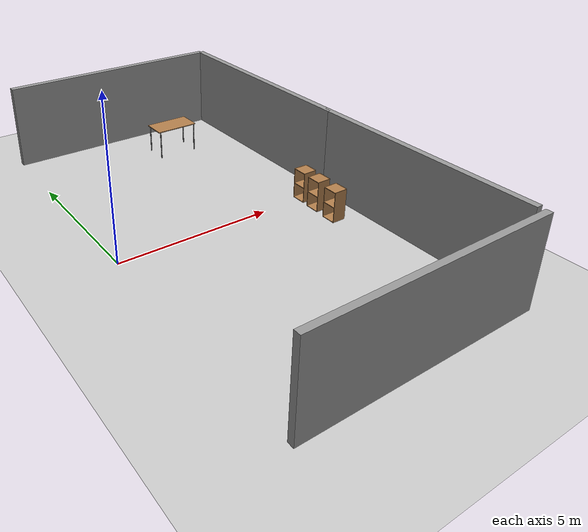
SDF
<sdf version="1.7">
 <world name="default">
  <model name="ground_plane">
   <static>1</static>
   <link name="link">
    <collision name="collision">
     <geometry><plane><normal>0 0 1</normal><size>100 100</size></plane></geometry>
     <surface><friction><ode><mu>100</mu><mu2>50</mu2></ode></friction></surface>
    </collision>
    <visual name="visual">
     <cast_shadows>0</cast_shadows>
     <geometry><plane><normal>0 0 1</normal><size>100 100</size></plane></geometry>
     <material>
      <script><uri>file://media/materials/scripts/gazebo.material</uri><name>Gazebo/Grey</name></script>
     </material>
    </visual>
   </link>
  </model>
  <model name="grey_wall">
   <static>1</static>
   <link name="link">
    <pose>0 0 1.4 0 -0 0</pose>
    <collision name="collision"><geometry><box><size>7.5 0.2 2.8</size></box></geometry></collision>
    <visual name="visual">
     <cast_shadows>0</cast_shadows>
     <geometry><box><size>7.5 0.2 2.8</size></box></geometry>
     <material>
      <script>
       <uri>model://grey_wall/materials/scripts</uri>
       <uri>model://grey_wall/materials/textures</uri>
       <name>vrc/grey_wall</name>
      </script>
     </material>
    </visual>
   </link>
   <pose>3.75 7.5 0 0 -0 0</pose>
  </model>
  <model name="grey_wall_2">
   <static>1</static>
   <link name="link">
    <pose>0 0 1.4 0 -0 0</pose>
    <collision name="collision"><geometry><box><size>7.5 0.2 2.8</size></box></geometry></collision>
    <visual name="visual">
     <cast_shadows>0</cast_shadows>
     <geometry><box><size>7.5 0.2 2.8</size></box></geometry>
     <material>
      <script>
       <uri>model://grey_wall/materials/scripts</uri>
       <uri>model://grey_wall/materials/textures</uri>
       <name>vrc/grey_wall</name>
      </script>
     </material>
    </visual>
   </link>
   <pose>3.75 -7.5 0 0 -0 0</pose>
  </model>
  <model name="grey_wall_5">
   <static>1</static>
   <link name="link">
    <pose>0 0 1.4 0 -0 0</pose>
    <collision name="collision"><geometry><box><size>7.5 0.2 2.8</size></box></geometry></collision>
    <visual name="visual">
     <cast_shadows>0</cast_shadows>
     <geometry><box><size>7.5 0.2 2.8</size></box></geometry>
     <material>
      <script>
       <uri>model://grey_wall/materials/scripts</uri>
       <uri>model://grey_wall/materials/textures</uri>
       <name>vrc/grey_wall</name>
      </script>
     </material>
    </visual>
   </link>
   <pose>7.5 -3.5 0 0 -0 1.5707</pose>
  </model>
  <model name="grey_wall_6">
   <static>1</static>
   <link name="link">
    <pose>0 0 1.4 0 -0 0</pose>
    <collision name="collision"><geometry><box><size>7.5 0.2 2.8</size></box></geometry></collision>
    <visual name="visual">
     <cast_shadows>0</cast_shadows>
     <geometry><box><size>7.5 0.2 2.8</size></box></geometry>
     <material>
      <script>
       <uri>model://grey_wall/materials/scripts</uri>
       <uri>model://grey_wall/materials/textures</uri>
       <name>vrc/grey_wall</name>
      </script>
     </material>
    </visual>
   </link>
   <pose>7.5 3.75 0 0 -0 1.5707</pose>
  </model>
  <model name="table">
   <static>1</static>
   <link name="link">
    <collision name="surface">
     <pose>0 0 1 0 -0 0</pose>
     <geometry><box><size>1.5 0.8 0.03</size></box></geometry>
     <surface><friction><ode><mu>0.6</mu><mu2>0.6</mu2></ode></friction></surface>
    </collision>
    <visual name="visual1">
     <pose>0 0 1 0 -0 0</pose>
     <geometry><box><size>1.5 0.8 0.03</size></box></geometry>
     <material>
      <script><uri>file://media/materials/scripts/gazebo.material</uri><name>Gazebo/Wood</name></script>
     </material>
    </visual>
    <collision name="front_left_leg">
     <pose>0.68 0.38 0.5 0 -0 0</pose>
     <geometry><cylinder><radius>0.02</radius><length>1</length></cylinder></geometry>
    </collision>
    <visual name="front_left_leg">
     <pose>0.68 0.38 0.5 0 -0 0</pose>
     <geometry><cylinder><radius>0.02</radius><length>1</length></cylinder></geometry>
     <material>
      <script><uri>file://media/materials/scripts/gazebo.material</uri><name>Gazebo/Grey</name></script>
     </material>
    </visual>
    <collision name="front_right_leg">
     <pose>0.68 -0.38 0.5 0 -0 0</pose>
     <geometry><cylinder><radius>0.02</radius><length>1</length></cylinder></geometry>
    </collision>
    <visual name="front_right_leg">
     <pose>0.68 -0.38 0.5 0 -0 0</pose>
     <geometry><cylinder><radius>0.02</radius><length>1</length></cylinder></geometry>
     <material>
      <script><uri>file://media/materials/scripts/gazebo.material</uri><name>Gazebo/Grey</name></script>
     </material>
    </visual>
    <collision name="back_right_leg">
     <pose>-0.68 -0.38 0.5 0 -0 0</pose>
     <geometry><cylinder><radius>0.02</radius><length>1</length></cylinder></geometry>
    </collision>
    <visual name="back_right_leg">
     <pose>-0.68 -0.38 0.5 0 -0 0</pose>
     <geometry><cylinder><radius>0.02</radius><length>1</length></cylinder></geometry>
     <material>
      <script><uri>file://media/materials/scripts/gazebo.material</uri><name>Gazebo/Grey</name></script>
     </material>
    </visual>
    <collision name="back_left_leg">
     <pose>-0.68 0.38 0.5 0 -0 0</pose>
     <geometry><cylinder><radius>0.02</radius><length>1</length></cylinder></geometry>
    </collision>
    <visual name="back_left_leg">
     <pose>-0.68 0.38 0.5 0 -0 0</pose>
     <geometry><cylinder><radius>0.02</radius><length>1</length></cylinder></geometry>
     <material>
      <script><uri>file://media/materials/scripts/gazebo.material</uri><name>Gazebo/Grey</name></script>
     </material>
    </visual>
   </link>
   <pose>4.98432 5.54874 0 0 -0 0</pose>
  </model>
  <model name="cabinet">
   <static>1</static>
   <link name="cabinet_bottom_plate">
    <inertial>
     <pose>0 0 -1 0 -0 0</pose>
     <inertia><ixx>2.05</ixx><ixy>0</ixy><ixz>0</ixz><iyy>2.05</iyy><iyz>0</iyz><izz>2.05</izz></inertia>
     <mass>25</mass>
    </inertial>
    <collision name="cabinet_bottom_plate_geom">
     <pose>0 0 0.01 0 -0 0</pose>
     <geometry><box><size>0.45 0.45 0.02</size></box></geometry>
    </collision>
    <visual name="cabinet_bottom_plate_geom_visual">
     <pose>0 0 0.01 0 -0 0</pose>
     <geometry><box><size>0.45 0.45 0.02</size></box></geometry>
     <material>
      <script><uri>file://media/materials/scripts/gazebo.material</uri><name>Gazebo/Wood</name></script>
     </material>
    </visual>
    <collision name="cabinet_bottom_plate_geom_cabinet_back_plate">
     <pose>0.235 0 0.51 0 -0 0</pose>
     <geometry><box><size>0.02 0.45 1.02</size></box></geometry>
    </collision>
    <visual name="cabinet_bottom_plate_geom_cabinet_back_plate_visual">
     <pose>0.235 0 0.51 0 -0 0</pose>
     <geometry><box><size>0.02 0.45 1.02</size></box></geometry>
     <material>
      <script><uri>file://media/materials/scripts/gazebo.material</uri><name>Gazebo/Wood</name></script>
     </material>
    </visual>
    <collision name="cabinet_bottom_plate_geom_cabinet_left_plate">
     <pose>0 0.235 0.51 0 -0 0</pose>
     <geometry><box><size>0.45 0.02 1.02</size></box></geometry>
    </collision>
    <visual name="cabinet_bottom_plate_geom_cabinet_left_plate_visual">
     <pose>0 0.235 0.51 0 -0 0</pose>
     <geometry><box><size>0.45 0.02 1.02</size></box></geometry>
     <material>
      <script><uri>file://media/materials/scripts/gazebo.material</uri><name>Gazebo/Wood</name></script>
     </material>
    </visual>
    <collision name="cabinet_bottom_plate_geom_cabinet_middle_plate">
     <pose>0 0 0.51 0 -0 0</pose>
     <geometry><box><size>0.45 0.45 0.02</size></box></geometry>
    </collision>
    <visual name="cabinet_bottom_plate_geom_cabinet_middle_plate_visual">
     <pose>0 0 0.51 0 -0 0</pose>
     <geometry><box><size>0.45 0.45 0.02</size></box></geometry>
     <material>
      <script><uri>file://media/materials/scripts/gazebo.material</uri><name>Gazebo/Wood</name></script>
     </material>
    </visual>
    <collision name="cabinet_bottom_plate_geom_cabinet_right_plate">
     <pose>0 -0.235 0.51 0 -0 0</pose>
     <geometry><box><size>0.45 0.02 1.02</size></box></geometry>
    </collision>
    <visual name="cabinet_bottom_plate_geom_cabinet_right_plate_visual">
     <pose>0 -0.235 0.51 0 -0 0</pose>
     <geometry><box><size>0.45 0.02 1.02</size></box></geometry>
     <material>
      <script><uri>file://media/materials/scripts/gazebo.material</uri><name>Gazebo/Wood</name></script>
     </material>
    </visual>
    <collision name="cabinet_bottom_plate_geom_cabinet_top_plate">
     <pose>0 0 1.01 0 -0 0</pose>
     <geometry><box><size>0.45 0.45 0.02</size></box></geometry>
    </collision>
    <visual name="cabinet_bottom_plate_geom_cabinet_top_plate_visual">
     <pose>0 0 1.01 0 -0 0</pose>
     <geometry><box><size>0.45 0.45 0.02</size></box></geometry>
     <material>
      <script><uri>file://media/materials/scripts/gazebo.material</uri><name>Gazebo/Wood</name></script>
     </material>
    </visual>
   </link>
   <pose>6.54523 -1.47526 0 0 -0 0</pose>
  </model>
  <model name="cabinet_0">
   <static>1</static>
   <link name="cabinet_bottom_plate">
    <inertial>
     <pose>0 0 -1 0 -0 0</pose>
     <inertia><ixx>2.05</ixx><ixy>0</ixy><ixz>0</ixz><iyy>2.05</iyy><iyz>0</iyz><izz>2.05</izz></inertia>
     <mass>25</mass>
    </inertial>
    <collision name="cabinet_bottom_plate_geom">
     <pose>0 0 0.01 0 -0 0</pose>
     <geometry><box><size>0.45 0.45 0.02</size></box></geometry>
    </collision>
    <visual name="cabinet_bottom_plate_geom_visual">
     <pose>0 0 0.01 0 -0 0</pose>
     <geometry><box><size>0.45 0.45 0.02</size></box></geometry>
     <material>
      <script><uri>file://media/materials/scripts/gazebo.material</uri><name>Gazebo/Wood</name></script>
     </material>
    </visual>
    <collision name="cabinet_bottom_plate_geom_cabinet_back_plate">
     <pose>0.235 0 0.51 0 -0 0</pose>
     <geometry><box><size>0.02 0.45 1.02</size></box></geometry>
    </collision>
    <visual name="cabinet_bottom_plate_geom_cabinet_back_plate_visual">
     <pose>0.235 0 0.51 0 -0 0</pose>
     <geometry><box><size>0.02 0.45 1.02</size></box></geometry>
     <material>
      <script><uri>file://media/materials/scripts/gazebo.material</uri><name>Gazebo/Wood</name></script>
     </material>
    </visual>
    <collision name="cabinet_bottom_plate_geom_cabinet_left_plate">
     <pose>0 0.235 0.51 0 -0 0</pose>
     <geometry><box><size>0.45 0.02 1.02</size></box></geometry>
    </collision>
    <visual name="cabinet_bottom_plate_geom_cabinet_left_plate_visual">
     <pose>0 0.235 0.51 0 -0 0</pose>
     <geometry><box><size>0.45 0.02 1.02</size></box></geometry>
     <material>
      <script><uri>file://media/materials/scripts/gazebo.material</uri><name>Gazebo/Wood</name></script>
     </material>
    </visual>
    <collision name="cabinet_bottom_plate_geom_cabinet_middle_plate">
     <pose>0 0 0.51 0 -0 0</pose>
     <geometry><box><size>0.45 0.45 0.02</size></box></geometry>
    </collision>
    <visual name="cabinet_bottom_plate_geom_cabinet_middle_plate_visual">
     <pose>0 0 0.51 0 -0 0</pose>
     <geometry><box><size>0.45 0.45 0.02</size></box></geometry>
     <material>
      <script><uri>file://media/materials/scripts/gazebo.material</uri><name>Gazebo/Wood</name></script>
     </material>
    </visual>
    <collision name="cabinet_bottom_plate_geom_cabinet_right_plate">
     <pose>0 -0.235 0.51 0 -0 0</pose>
     <geometry><box><size>0.45 0.02 1.02</size></box></geometry>
    </collision>
    <visual name="cabinet_bottom_plate_geom_cabinet_right_plate_visual">
     <pose>0 -0.235 0.51 0 -0 0</pose>
     <geometry><box><size>0.45 0.02 1.02</size></box></geometry>
     <material>
      <script><uri>file://media/materials/scripts/gazebo.material</uri><name>Gazebo/Wood</name></script>
     </material>
    </visual>
    <collision name="cabinet_bottom_plate_geom_cabinet_top_plate">
     <pose>0 0 1.01 0 -0 0</pose>
     <geometry><box><size>0.45 0.45 0.02</size></box></geometry>
    </collision>
    <visual name="cabinet_bottom_plate_geom_cabinet_top_plate_visual">
     <pose>0 0 1.01 0 -0 0</pose>
     <geometry><box><size>0.45 0.45 0.02</size></box></geometry>
     <material>
      <script><uri>file://media/materials/scripts/gazebo.material</uri><name>Gazebo/Wood</name></script>
     </material>
    </visual>
   </link>
   <pose>6.5742 -0.694803 0 0 -0 0</pose>
  </model>
  <model name="cabinet_1">
   <static>1</static>
   <link name="cabinet_bottom_plate">
    <inertial>
     <pose>0 0 -1 0 -0 0</pose>
     <inertia><ixx>2.05</ixx><ixy>0</ixy><ixz>0</ixz><iyy>2.05</iyy><iyz>0</iyz><izz>2.05</izz></inertia>
     <mass>25</mass>
    </inertial>
    <collision name="cabinet_bottom_plate_geom">
     <pose>0 0 0.01 0 -0 0</pose>
     <geometry><box><size>0.45 0.45 0.02</size></box></geometry>
    </collision>
    <visual name="cabinet_bottom_plate_geom_visual">
     <pose>0 0 0.01 0 -0 0</pose>
     <geometry><box><size>0.45 0.45 0.02</size></box></geometry>
     <material>
      <script><uri>file://media/materials/scripts/gazebo.material</uri><name>Gazebo/Wood</name></script>
     </material>
    </visual>
    <collision name="cabinet_bottom_plate_geom_cabinet_back_plate">
     <pose>0.235 0 0.51 0 -0 0</pose>
     <geometry><box><size>0.02 0.45 1.02</size></box></geometry>
    </collision>
    <visual name="cabinet_bottom_plate_geom_cabinet_back_plate_visual">
     <pose>0.235 0 0.51 0 -0 0</pose>
     <geometry><box><size>0.02 0.45 1.02</size></box></geometry>
     <material>
      <script><uri>file://media/materials/scripts/gazebo.material</uri><name>Gazebo/Wood</name></script>
     </material>
    </visual>
    <collision name="cabinet_bottom_plate_geom_cabinet_left_plate">
     <pose>0 0.235 0.51 0 -0 0</pose>
     <geometry><box><size>0.45 0.02 1.02</size></box></geometry>
    </collision>
    <visual name="cabinet_bottom_plate_geom_cabinet_left_plate_visual">
     <pose>0 0.235 0.51 0 -0 0</pose>
     <geometry><box><size>0.45 0.02 1.02</size></box></geometry>
     <material>
      <script><uri>file://media/materials/scripts/gazebo.material</uri><name>Gazebo/Wood</name></script>
     </material>
    </visual>
    <collision name="cabinet_bottom_plate_geom_cabinet_middle_plate">
     <pose>0 0 0.51 0 -0 0</pose>
     <geometry><box><size>0.45 0.45 0.02</size></box></geometry>
    </collision>
    <visual name="cabinet_bottom_plate_geom_cabinet_middle_plate_visual">
     <pose>0 0 0.51 0 -0 0</pose>
     <geometry><box><size>0.45 0.45 0.02</size></box></geometry>
     <material>
      <script><uri>file://media/materials/scripts/gazebo.material</uri><name>Gazebo/Wood</name></script>
     </material>
    </visual>
    <collision name="cabinet_bottom_plate_geom_cabinet_right_plate">
     <pose>0 -0.235 0.51 0 -0 0</pose>
     <geometry><box><size>0.45 0.02 1.02</size></box></geometry>
    </collision>
    <visual name="cabinet_bottom_plate_geom_cabinet_right_plate_visual">
     <pose>0 -0.235 0.51 0 -0 0</pose>
     <geometry><box><size>0.45 0.02 1.02</size></box></geometry>
     <material>
      <script><uri>file://media/materials/scripts/gazebo.material</uri><name>Gazebo/Wood</name></script>
     </material>
    </visual>
    <collision name="cabinet_bottom_plate_geom_cabinet_top_plate">
     <pose>0 0 1.01 0 -0 0</pose>
     <geometry><box><size>0.45 0.45 0.02</size></box></geometry>
    </collision>
    <visual name="cabinet_bottom_plate_geom_cabinet_top_plate_visual">
     <pose>0 0 1.01 0 -0 0</pose>
     <geometry><box><size>0.45 0.45 0.02</size></box></geometry>
     <material>
      <script><uri>file://media/materials/scripts/gazebo.material</uri><name>Gazebo/Wood</name></script>
     </material>
    </visual>
   </link>
   <pose>6.60299 -0.000994 0 0 -0 0</pose>
  </model>
 </world>
</sdf>
